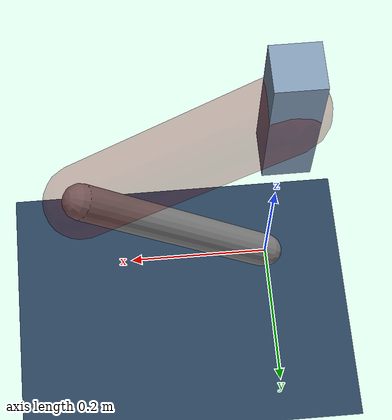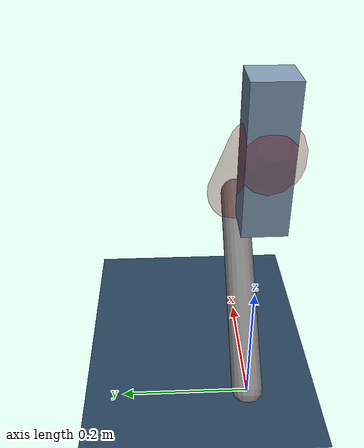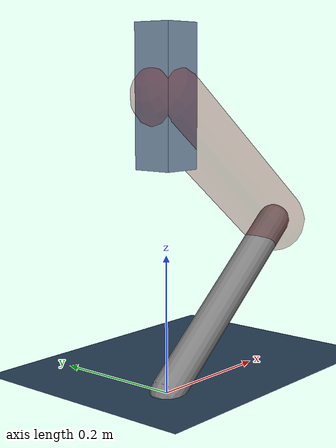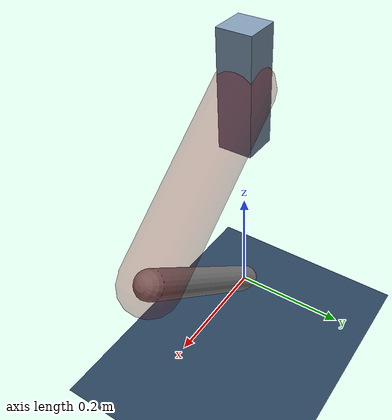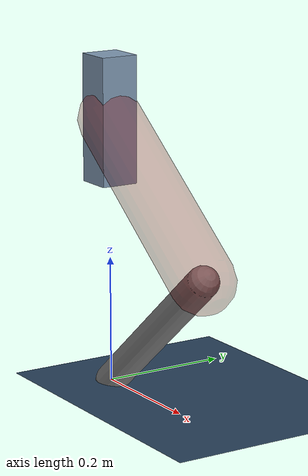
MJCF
<mujoco model="Hopper2D">
	<compiler inertiafromgeom="true" angle="radian" />
	<option timestep="0.001" integrator="implicit" cone="elliptic" solver="Newton" tolerance="1e-10" />

	<default>
		<geom contype="1" conaffinity="1" condim="3" friction="2 0.005 0.0001" solref="0.005 1" />
		<joint limited="true" damping="0.1" />
	</default>

	<asset>
		<texture name="skybox" type="skybox" builtin="gradient" rgb1=".4 .6 .8" rgb2="0 0 0" width="800" height="800" />
		<texture name="grid" type="2d" builtin="checker" rgb1=".1 .2 .3" rgb2=".2 .3 .4" width="300" height="300" mark="edge" markrgb=".2 .3 .4" />
		<material name="ground" texture="grid" texrepeat="1 1" texuniform="true" reflectance="0.1" />
		<material name="leg" rgba="0.5 0.6 0.7 1" />
	</asset>

	<worldbody>

		<geom name="floor" type="plane" size="5 5 0.25" material="ground" />

		<light directional="false" diffuse="0.8 0.8 0.8" specular="0.3 0.3 0.3" pos="0 0 2" dir="0 0 -1" />
		<light mode="targetbodycom" target="base" directional="false" diffuse="0.8 0.8 0.8" specular="0.3 0.3 0.3" pos="0 0 2" dir="0 0 -1" />

		<camera name="fixed" pos="0 -2 1" xyaxes="1 0 0 0 0 1" />
		<camera name="tracking" mode="trackcom" pos="0 -3 1" />

		<body name="root" pos="0 0 0.42101064622806716">
			<joint name="slide_x" type="slide" axis="1 0 0" range="-100 100" />
			<joint name="slide_z" type="slide" axis="0 0 1" range="0 10" />

			<body name="base" pos="0 0 0">
				<geom name="torso" type="box" size="0.03 0.03 0.1" mass="3.383" material="leg" />

				<body name="link1" pos="0 0 0" euler="0 0.6553713660997114 0">
					<joint type="hinge" axis="0 -1 0" pos="0 0 0" name="hinge1" limited="true" range="-3.14 3.14" stiffness="0" damping="0.1" />
					<geom name="thigh" type="capsule" fromto="0 0 0 0.3283973064135991 0 0" size="0.05" rgba="0.5 0 0 0.3" mass="1.0664124579580774" />

					<body name="link2" pos="0.3283973064135991 0 0" euler="0 1.7827063215170365 0">
						<joint type="hinge" axis="0 -1 0" pos="0 0 0" name="hinge2" limited="true" range="-3.14 3.14" stiffness="0" damping="0.1" />
						<geom name="shank" type="capsule" fromto="0 0 0 0.3414236712759021 0 0" size="0.025" mass="0.5170389370207217" />

					</body>
				</body>
			</body>
		</body>
	</worldbody>

	<actuator>
		<motor name="torque1" joint="hinge1" ctrlrange="-230.44188213327737 230.44188213327737" ctrllimited="true" gear="1" />
		<motor name="torque2" joint="hinge2" ctrlrange="-38.122634965936435 38.122634965936435" ctrllimited="true" gear="1" />
	</actuator>
</mujoco>
